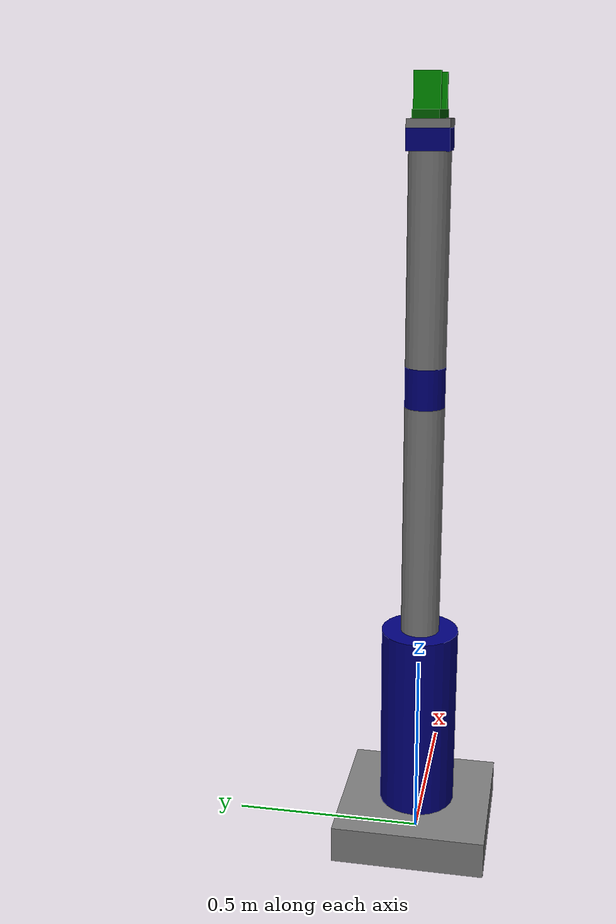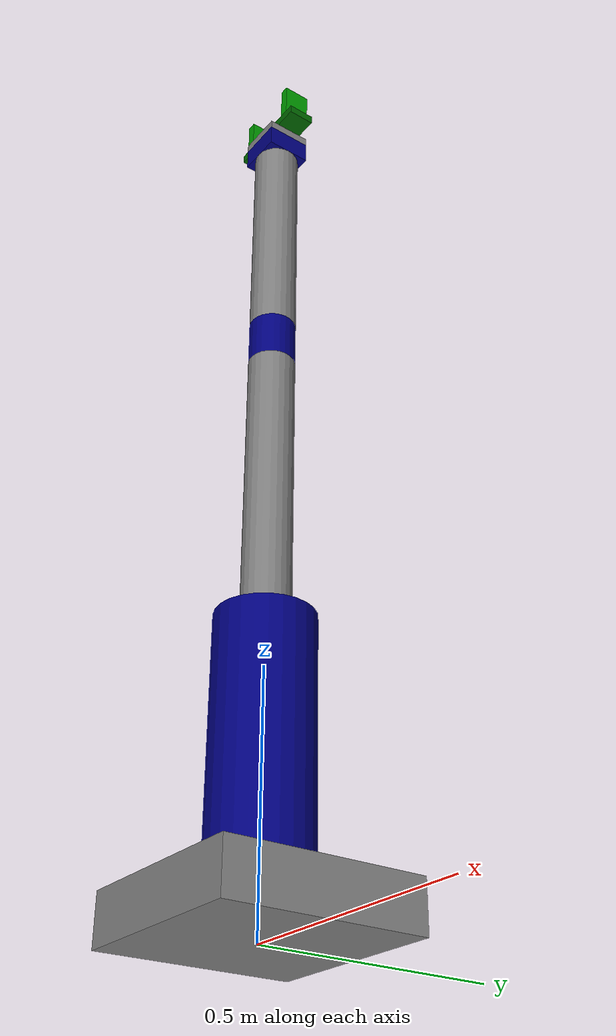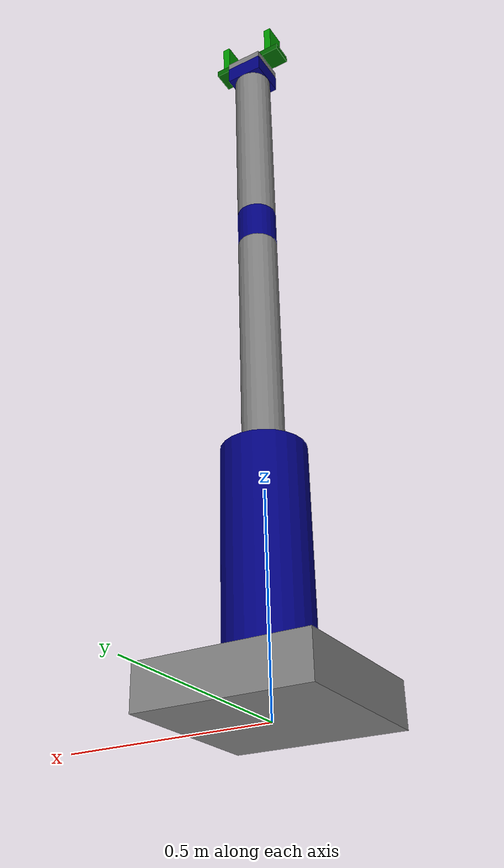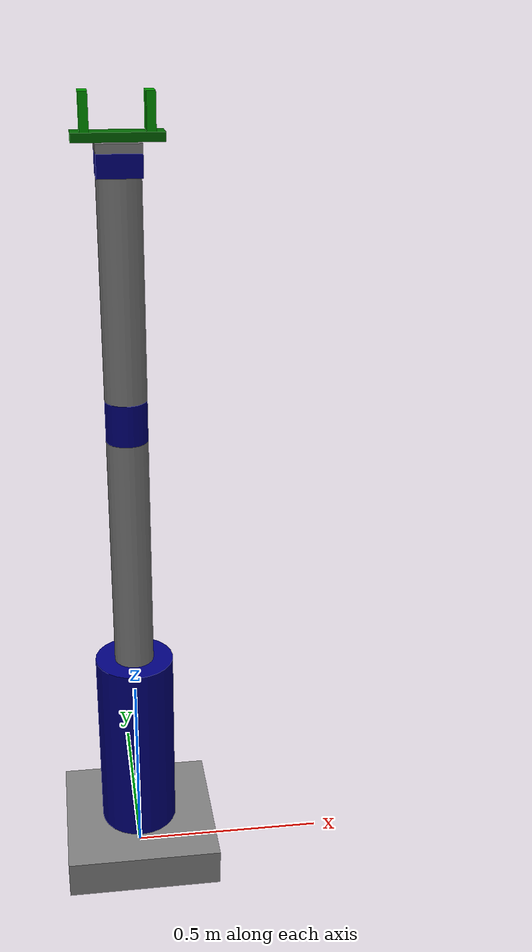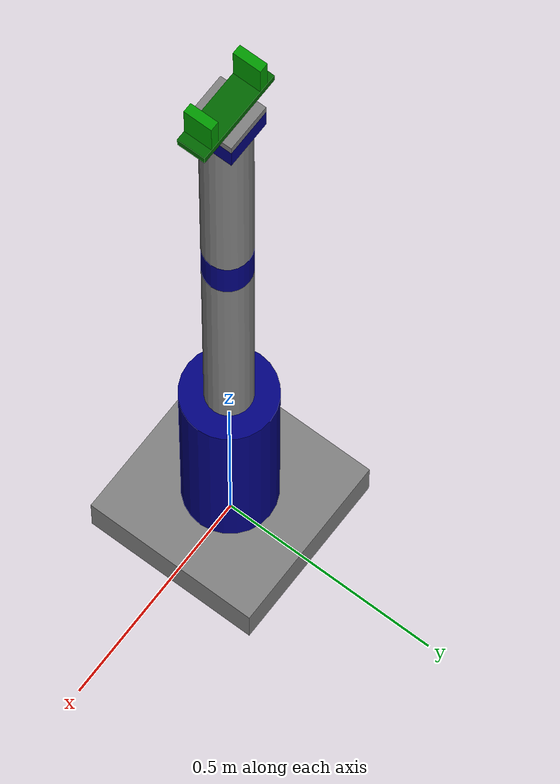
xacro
<?xml version="1.0"?>
<robot name="my_robot" xmlns:xacro="http://www.ros.org/wiki/xacro">

  <xacro:arg name="use_gazebo" default="false" />

  <xacro:include filename="$(find gzbot_description)/urdf/mech/common_properties.urdf.xacro" />
  <xacro:include filename="$(find gzbot_description)/urdf/common/inertial_macros.urdf.xacro" />

  <xacro:include filename="$(find gzbot_description)/urdf/mech/gzbot_arm.urdf.xacro" />
  <xacro:gzbot_arm />

  <xacro:include filename="$(find gzbot_description)/urdf/mech/gzbot_gripper.urdf.xacro" />
  <xacro:gzbot_gripper />

  <xacro:include filename="$(find gzbot_description)/urdf/control/gzbot_ros2_control.urdf.xacro" />
  <xacro:gzbot_ros2_control use_gazebo="$(arg use_gazebo)" />

  <xacro:include filename="$(find gzbot_description)/urdf/control/gzbot_sim_ros2_control.urdf.xacro" />
  <xacro:gzbot_sim_ros2_control use_gazebo="$(arg use_gazebo)" />

  <joint name="gripper_base_joint" type="fixed">
    <parent link="tool_link" />
    <child link="gripper_base_link" />
    <origin xyz="0 0 0" rpy="0 0 0" />
  </joint>

</robot>

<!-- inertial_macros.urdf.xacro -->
<robot xmlns:xacro="http://www.ros.org/wiki/xacro">

    <!-- ============ 惯性张量宏：按几何形状自动计算 ============
         gz 物理引擎要求活动关节连接的 link 必须有有效质量/惯性，
         零惯性实体会被拒绝创建（这是之前机器人进不去 gz 的根因）。
         公式来源：标准刚体惯性张量，惯性原点取几何中心。 -->

    <!-- 长方体：m 质量(kg)，x y z 三边长(m) -->
    <xacro:macro name="box_inertial" params="m x y z">
        <inertial>
            <mass value="${m}" />
            <inertia
                ixx="${m * (y*y + z*z) / 12.0}" ixy="0" ixz="0"
                iyy="${m * (x*x + z*z) / 12.0}" iyz="0"
                izz="${m * (x*x + y*y) / 12.0}" />
        </inertial>
    </xacro:macro>

    <!-- 圆柱体：m 质量(kg)，r 半径(m)，l 长度(m)，轴沿 z -->
    <xacro:macro name="cylinder_inertial" params="m r l">
        <inertial>
            <mass value="${m}" />
            <inertia
                ixx="${m * (3*r*r + l*l) / 12.0}" ixy="0" ixz="0"
                iyy="${m * (3*r*r + l*l) / 12.0}" iyz="0"
                izz="${m * r*r / 2.0}" />
        </inertial>
    </xacro:macro>

    <!-- 极小占位惯性：给无几何的虚拟 link（如 tool_link）兜底 -->
    <xacro:macro name="dummy_inertial">
        <inertial>
            <mass value="0.001" />
            <inertia ixx="1e-6" ixy="0" ixz="0" iyy="1e-6" iyz="0" izz="1e-6" />
        </inertial>
    </xacro:macro>

</robot>

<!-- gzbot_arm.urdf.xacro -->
<robot xmlns:xacro="http://www.ros.org/wiki/xacro">
    <xacro:macro name="gzbot_arm">

        <!-- base_link: box size 0.4 0.4 0.1 -->
        <link name="base_link">
            <xacro:box_inertial m="1.0" x="0.4" y="0.4" z="0.1" />
            <visual>
                <geometry>
                    <box size="0.4 0.4 0.1" />
                </geometry>
                <origin xyz="0 0 0.05" rpy="0 0 0" />
                <material name="grey">
                    <color rgba="0.5 0.5 0.5 1" />
                </material>
            </visual>
            <collision>
                <geometry>
                    <box size="0.4 0.4 0.1" />
                </geometry>
                <origin xyz="0 0 0.05" rpy="0 0 0" />
            </collision>
        </link>
        <!-- gz 材质写法（Gazebo/Orange 是 Gazebo Classic 专用，gz/ign 不识别） -->
        <gazebo reference="base_link">
            <visual>
                <material>
                    <ambient>0.5 0.5 0.5 1</ambient>
                    <diffuse>0.5 0.5 0.5 1</diffuse>
                </material>
            </visual>
        </gazebo>

        <!-- shoulder_link: cylinder length 0.5 radius 0.1 -->
        <link name="shoulder_link">
            <xacro:cylinder_inertial m="0.5" r="0.1" l="0.5" />
            <visual>
                <geometry>
                    <cylinder length="0.5" radius="0.1" />
                </geometry>
                <origin xyz="0 0 0.25" rpy="0 0 0" />
                <material name="blue">
                    <color rgba="0 0 0.5 1" />
                </material>
            </visual>
            <collision>
                <geometry>
                    <box size="0.2 0.2 0.5" />
                </geometry>
                <origin xyz="0 0 0.25" rpy="0 0 0" />
            </collision>
        </link>

        <!-- arm_link: cylinder length 0.6 radius 0.05 -->
        <link name="arm_link">
            <xacro:cylinder_inertial m="0.4" r="0.05" l="0.6" />
            <visual>
                <geometry>
                    <cylinder length="0.6" radius="0.05" />
                </geometry>
                <!-- cylinder default along z, rotate to x direction -->
                <origin xyz="0 0 0.3" rpy="0 0 0" />
                <material name="grey">
                    <color rgba="0.5 0.5 0.5 1" />
                </material>
            </visual>
            <collision>
                <geometry>
                    <box size="0.1 0.1 0.6" />
                </geometry>
                <origin xyz="0 0 0.3" rpy="0 0 0" />
            </collision>
        </link>

        <!-- elbow_link: cylinder length 0.1 radius 0.05 -->
        <link name="elbow_link">
            <xacro:cylinder_inertial m="0.1" r="0.05" l="0.1" />
            <visual>
                <geometry>
                    <cylinder length="0.1" radius="0.05" />
                </geometry>
                <origin xyz="0 0 0.05" rpy="0 0 0" />
                <material name="blue">
                    <color rgba="0 0 0.5 1" />
                </material>
            </visual>
            <collision>
                <geometry>
                    <box size="0.1 0.1 0.1" />
                </geometry>
                <origin xyz="0 0 0.05" rpy="0 0 0" />
            </collision>
        </link>

        <!-- forearm_link: cylinder length 0.5 radius 0.05 -->
        <link name="forearm_link">
            <xacro:cylinder_inertial m="0.3" r="0.05" l="0.5" />
            <visual>
                <geometry>
                    <cylinder length="0.5" radius="0.05" />
                </geometry>
                <!-- cylinder default along z, rotate to x direction -->
                <origin xyz="0 0 0.25" rpy="0 0 0" />
                <material name="grey">
                    <color rgba="0.5 0.5 0.5 1" />
                </material>
            </visual>
            <collision>
                <geometry>
                    <box size="0.1 0.1 0.5" />
                </geometry>
                <origin xyz="0 0 0.25" rpy="0 0 0" />
            </collision>
        </link>

        <!-- wrist_link: box size 0.1 0.1 0.05 -->
        <link name="wrist_link">
            <xacro:box_inertial m="0.1" x="0.1" y="0.1" z="0.05" />
            <visual>
                <geometry>
                    <box size="0.1 0.1 0.05" />
                </geometry>
                <origin xyz="0 0 0.025" rpy="0 0 0" />
                <material name="blue">
                    <color rgba="0 0 0.5 1" />
                </material>
            </visual>
            <collision>
                <geometry>
                    <box size="0.1 0.1 0.05" />
                </geometry>
                <origin xyz="0 0 0.025" rpy="0 0 0" />
            </collision>
        </link>

        <!-- hand_link: box size 0.1 0.1 0.02 -->
        <link name="hand_link">
            <xacro:box_inertial m="0.05" x="0.1" y="0.1" z="0.02" />
            <visual>
                <geometry>
                    <box size="0.1 0.1 0.02" />
                </geometry>
                <origin xyz="0 0 0.01" rpy="0 0 0" />
                <material name="grey">
                    <color rgba="0.5 0.5 0.5 1" />
                </material>
            </visual>
            <collision>
                <geometry>
                    <box size="0.1 0.1 0.02" />
                </geometry>
                <origin xyz="0 0 0.01" rpy="0 0 0" />
            </collision>
        </link>

        <!-- tool_link: no visual，占位惯性防零质量实体被拒 -->
        <link name="tool_link">
            <xacro:dummy_inertial />
        </link>

        <!-- joint1: revolute, axis z, min -3.14, max 3.14 -->
        <joint name="joint1" type="revolute">
            <parent link="base_link" />
            <child link="shoulder_link" />
            <origin xyz="0 0 0.1" rpy="0 0 0" />
            <axis xyz="0 0 1" />
            <limit lower="-3.14" upper="3.14" effort="1000.0" velocity="1.0" />
        </joint>

        <!-- joint2: revolute, axis y, min 0, max 2.5 -->
        <joint name="joint2" type="revolute">
            <parent link="shoulder_link" />
            <child link="arm_link" />
            <origin xyz="0 0 0.5" rpy="0 0 0" />
            <axis xyz="0 1 0" />
            <limit lower="0" upper="2.5" effort="1000.0" velocity="1.0" />
        </joint>

        <!-- joint3: revolute, axis y, min 0, max 2.5 -->
        <joint name="joint3" type="revolute">
            <parent link="arm_link" />
            <child link="elbow_link" />
            <origin xyz="0 0 0.6" rpy="0 0 0" />
            <axis xyz="0 1 0" />
            <limit lower="0" upper="2.5" effort="1000.0" velocity="1.0" />
        </joint>

        <!-- joint4: revolute, axis z, min -3.14, max 3.14 -->
        <joint name="joint4" type="revolute">
            <parent link="elbow_link" />
            <child link="forearm_link" />
            <origin xyz="0 0 0.1" rpy="0 0 0" />
            <axis xyz="0 0 1" />
            <limit lower="-3.14" upper="3.14" effort="1000.0" velocity="1.0" />
        </joint>

        <!-- joint5: revolute, axis y, min -1.57, max 1.57 -->
        <joint name="joint5" type="revolute">
            <parent link="forearm_link" />
            <child link="wrist_link" />
            <origin xyz="0 0 0.5" rpy="0 0 0" />
            <axis xyz="0 1 0" />
            <limit lower="-1.57" upper="1.57" effort="1000.0" velocity="1.0" />
        </joint>

        <!-- joint6: continuous, axis z -->
        <joint name="joint6" type="continuous">
            <parent link="wrist_link" />
            <child link="hand_link" />
            <origin xyz="0 0 0.05" rpy="0 0 0" />
            <axis xyz="0 0 1" />
        </joint>

        <!-- hand_tool_joint: fixed -->
        <joint name="hand_tool_joint" type="fixed">
            <parent link="hand_link" />
            <child link="tool_link" />
            <origin xyz="0 0 0.02" rpy="0 0 0" />
        </joint>
    </xacro:macro>
</robot>

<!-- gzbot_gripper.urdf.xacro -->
<robot xmlns:xacro="http://www.ros.org/wiki/xacro">

    <xacro:macro name="gzbot_gripper">
        <!-- 夹爪底座 -->
        <link name="gripper_base_link">
            <xacro:box_inertial m="0.1" x="0.20" y="0.06" z="0.02" />
            <visual>
                <geometry>
                    <box size="0.20 0.06 0.02" />
                </geometry>
                <origin xyz="0 0 0.01" rpy="0 0 0" />
                <material name="dark_green">
                    <color rgba="0 0.4 0 1" />
                </material>
            </visual>

            <collision>
                <geometry>
                    <box size="0.20 0.06 0.02" />
                </geometry>
                <origin xyz="0 0 0.01" rpy="0 0 0" />
            </collision>
        </link>

        <!-- 左夹爪手指 -->
        <link name="gripper_left_finger_link">
            <xacro:box_inertial m="0.02" x="0.02" y="0.06" z="0.08" />
            <visual>
                <geometry>
                    <box size="0.02 0.06 0.08" />
                </geometry>
                <origin xyz="0 0 0.04" rpy="0 0 0" />
                <material name="light_green">
                    <color rgba="0 0.6 0 1" />
                </material>
            </visual>

            <collision>
                <geometry>
                    <box size="0.02 0.06 0.08" />
                </geometry>
                <origin xyz="0 0 0.04" rpy="0 0 0" />
            </collision>
        </link>

        <!-- 右夹爪手指 -->
        <link name="gripper_right_finger_link">
            <xacro:box_inertial m="0.02" x="0.02" y="0.06" z="0.08" />
            <visual>
                <geometry>
                    <box size="0.02 0.06 0.08" />
                </geometry>
                <origin xyz="0 0 0.04" rpy="0 0 0" />
                <material name="light_green">
                    <color rgba="0 0.6 0 1" />
                </material>
            </visual>

            <collision>
                <geometry>
                    <box size="0.02 0.06 0.08" />
                </geometry>
                <origin xyz="0 0 0.04" rpy="0 0 0" />
            </collision>
        </link>

        <!-- 左手指连接到底座（axis 朝外、零点=张开，负值=闭合，与 mycobot 习惯一致） -->
        <joint name="gripper_left_finger_joint" type="prismatic">
            <parent link="gripper_base_link" />
            <child link="gripper_left_finger_link" />
            <origin xyz="-0.07 0 0.02" rpy="0 0 0" />
            <axis xyz="-1 0 0" />
            <limit effort="1000.0" velocity="1.0" lower="-0.06" upper="0.0" />
        </joint>

        <!-- 右手指连接到底座（mimic 标签：gz 物理引擎会忽略，物理联动由 ros2_control 的 mimic param 实现；
             此标签供 robot_state_publisher 显示右手指、MoveIt 解析用） -->
        <joint name="gripper_right_finger_joint" type="prismatic">
            <parent link="gripper_base_link" />
            <child link="gripper_right_finger_link" />
            <origin xyz="0.07 0 0.02" rpy="0 0 0" />
            <axis xyz="1 0 0" />
            <mimic joint="gripper_left_finger_joint" multiplier="1.0" offset="0.0" />
            <limit effort="1000.0" velocity="1.0" lower="-0.06" upper="0.0" />
        </joint>
    </xacro:macro>

</robot>
